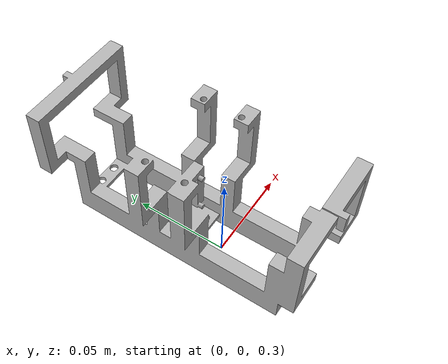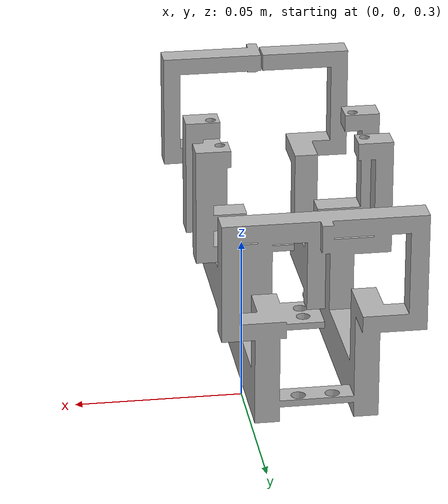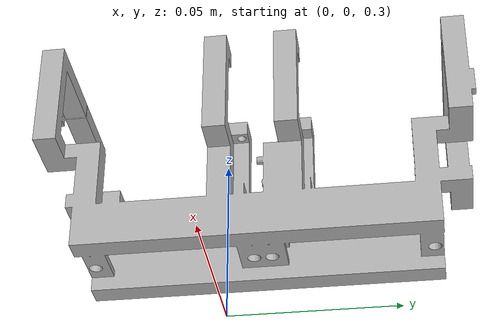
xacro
<?xml version="1.0" ?>
<robot name="URDF" xmlns:xacro="http://www.ros.org/wiki/xacro">

<xacro:include filename="$(find URDF_description)/urdf/materials.xacro" />
<xacro:include filename="$(find URDF_description)/urdf/URDF.trans" />
<xacro:include filename="$(find URDF_description)/urdf/URDF.gazebo" />
<link name="base_link">
  <inertial>
    <origin xyz="-0.011839182746535918 0.008528469020843765 0.3484661260584956" rpy="0 0 0"/>
    <mass value="0.38761529111787346"/>
    <inertia ixx="0.00075" iyy="0.00027" izz="0.000705" ixy="0.0" iyz="-0.0" ixz="0.0"/>
  </inertial>
  <visual>
    <origin xyz="0 0 0" rpy="0 0 0"/>
    <geometry>
      <mesh filename="package://URDF_description/meshes/base_link.stl" scale="0.001 0.001 0.001"/>
    </geometry>
    <material name="silver"/>
  </visual>
  <collision>
    <origin xyz="0 0 0" rpy="0 0 0"/>
    <geometry>
      <mesh filename="package://URDF_description/meshes/base_link.stl" scale="0.001 0.001 0.001"/>
    </geometry>
  </collision>
</link>

</robot>

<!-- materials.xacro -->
<robot name="URDF" xmlns:xacro="http://www.ros.org/wiki/xacro" >

<material name="silver">
  <color rgba="0.700 0.700 0.700 1.000"/>
</material>

</robot>

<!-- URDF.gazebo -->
<robot name="URDF" xmlns:xacro="http://www.ros.org/wiki/xacro" >

<xacro:property name="body_color" value="Gazebo/Silver" />

<gazebo>
  <plugin name="control" filename="libgazebo_ros_control.so"/>
</gazebo>
<gazebo reference="base_link">
  <material>${body_color}</material>
  <mu1>0.2</mu1>
  <mu2>0.2</mu2>
  <selfCollide>true</selfCollide>
  <gravity>true</gravity>
</gazebo>

<gazebo reference="Component69_1">
  <material>${body_color}</material>
  <mu1>0.2</mu1>
  <mu2>0.2</mu2>
  <selfCollide>true</selfCollide>
</gazebo>

</robot>
